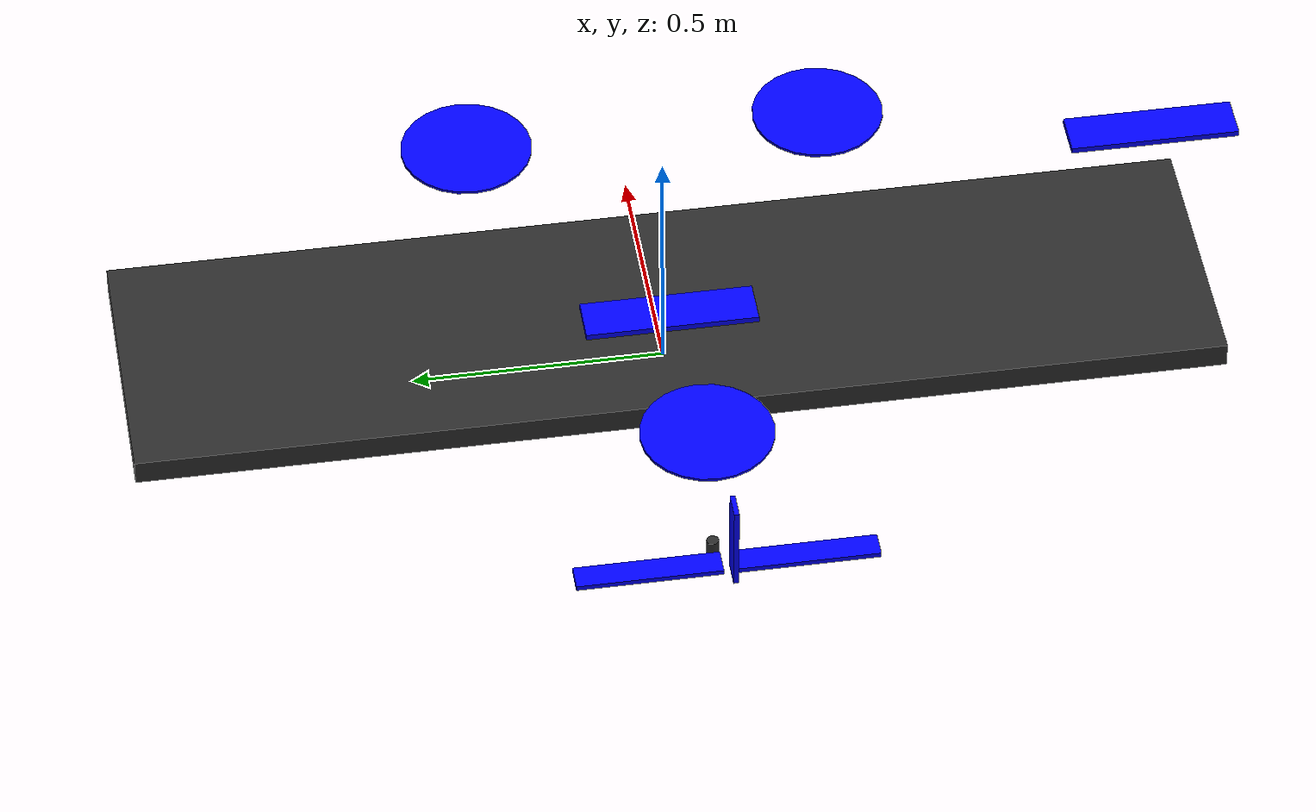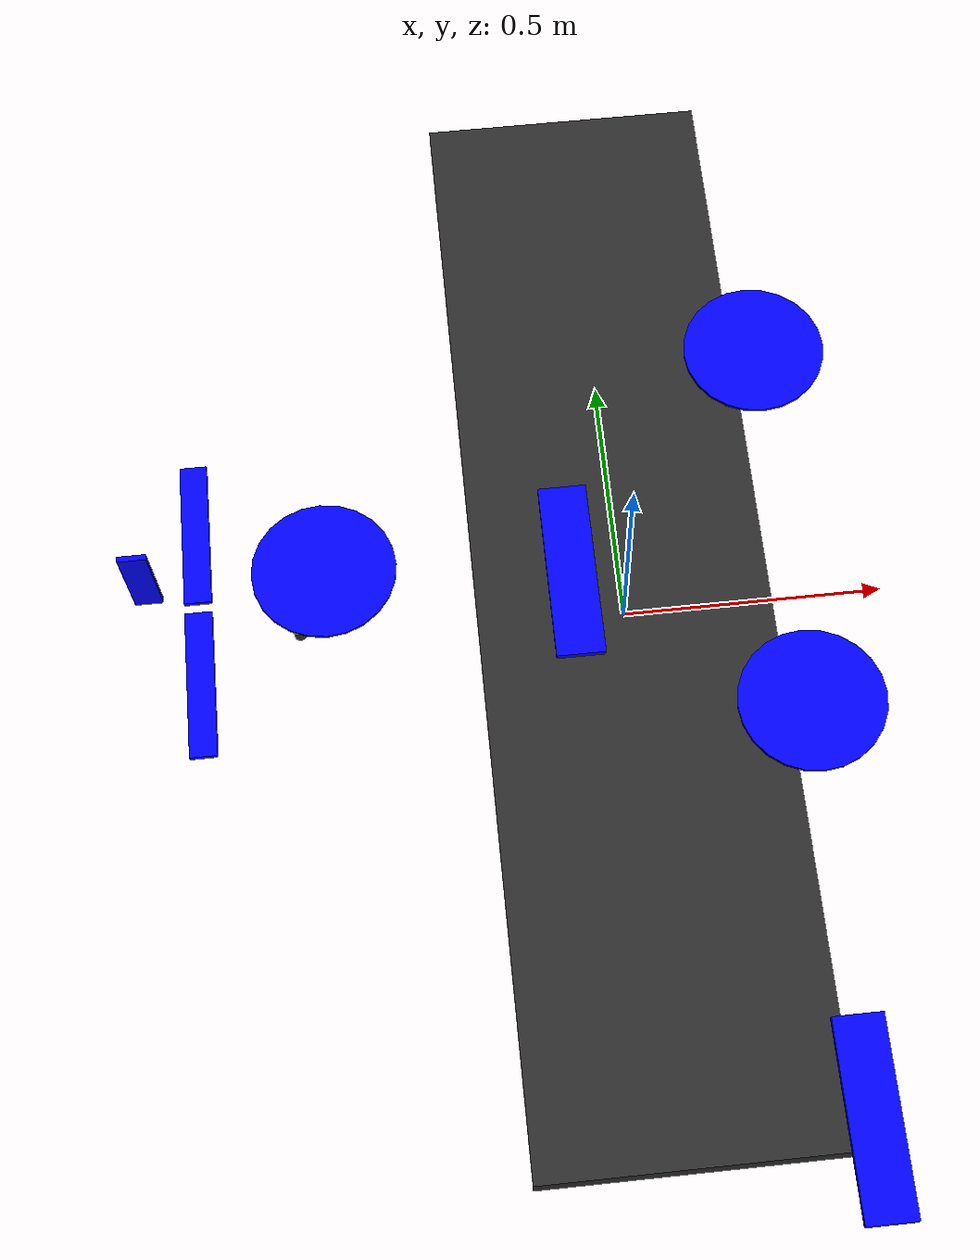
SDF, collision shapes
<?xml version="1.0" encoding="UTF-8"?>
<sdf version='1.5'>
  <model name='tiltrotor_tailplane'>
    <pose>0 0 0.246 0 0 0</pose>
    <link name='base_link'>
      <pose>0 0 0 0 0 0</pose>
      <inertial>
        <pose>0 0 0 0 0 0</pose>
        <mass>5</mass>
        <inertia>
          <ixx>0.2</ixx>
          <ixy>0</ixy>
          <ixz>0</ixz>
          <iyy>0.25</iyy>
          <iyz>0</iyz>
          <izz>0.25</izz>
        </inertia>
      </inertial>
        <enable_wind>true</enable_wind>
      <collision name='base_link_collision'>
        <pose>-0.01 0 -0.135 0 0 0</pose>
        <geometry>
          <box>
            <size>0.55 2.144 0.05</size>
          </box>
        </geometry>
        <surface>
          <contact>
            <ode>
              <kp>100000</kp>
              <kd>1.0</kd>
              <max_vel>0.1</max_vel>
              <min_depth>0.001</min_depth>
            </ode>
          </contact>
          <friction>
            <ode>
              <mu>0.6</mu>
              <mu2>0.5</mu2>
            </ode>
          </friction>
        </surface>
      </collision>
      <visual name='base_link_visual'>
        <pose>0.53 -1.072 -0.1 1.5707963268 0 3.1415926536</pose>
        <geometry>
          <mesh>
            <scale>0.001 0.001 0.001</scale>
            <uri>model://standard_vtol/meshes/x8_wing.dae</uri>
          </mesh>
        </geometry>
        <material> <!-- DarkGrey-->
          <ambient>0.175 0.175 0.175 1.0</ambient>
          <diffuse>0.175 0.175 0.175 1.0</diffuse>
        </material>
      </visual>
      <!-- Tail boom carrying the rear rotor and the empennage. -->
      <collision name='leg_front_right_collision'>
        <pose>0.22 -0.25 -0.175 0 0 0</pose>
        <geometry>
          <cylinder>
            <radius>0.012</radius>
            <length>0.05</length>
          </cylinder>
        </geometry>
        <surface>
          <contact>
            <ode>
              <kp>12000</kp>
              <kd>25.0</kd>
              <max_vel>0.02</max_vel>
              <min_depth>0.003</min_depth>
            </ode>
          </contact>
          <friction>
            <ode>
              <mu>0.9</mu>
              <mu2>0.9</mu2>
            </ode>
          </friction>
        </surface>
      </collision>
      <visual name='leg_front_right_visual'>
        <pose>0.22 -0.25 -0.175 0 0 0</pose>
        <geometry>
          <cylinder>
            <radius>0.012</radius>
            <length>0.05</length>
          </cylinder>
        </geometry>
        <material>
          <ambient>0.1 0.1 0.1 1.0</ambient>
          <diffuse>0.1 0.1 0.1 1.0</diffuse>
        </material>
      </visual>
      <collision name='leg_front_left_collision'>
        <pose>0.22 0.25 -0.175 0 0 0</pose>
        <geometry>
          <cylinder>
            <radius>0.012</radius>
            <length>0.05</length>
          </cylinder>
        </geometry>
        <surface>
          <contact>
            <ode>
              <kp>12000</kp>
              <kd>25.0</kd>
              <max_vel>0.02</max_vel>
              <min_depth>0.003</min_depth>
            </ode>
          </contact>
          <friction>
            <ode>
              <mu>0.9</mu>
              <mu2>0.9</mu2>
            </ode>
          </friction>
        </surface>
      </collision>
      <visual name='leg_front_left_visual'>
        <pose>0.22 0.25 -0.175 0 0 0</pose>
        <geometry>
          <cylinder>
            <radius>0.012</radius>
            <length>0.05</length>
          </cylinder>
        </geometry>
        <material>
          <ambient>0.1 0.1 0.1 1.0</ambient>
          <diffuse>0.1 0.1 0.1 1.0</diffuse>
        </material>
      </visual>
      <collision name='leg_tail_collision'>
        <pose>-0.62 0.0 -0.175 0 0 0</pose>
        <geometry>
          <cylinder>
            <radius>0.012</radius>
            <length>0.05</length>
          </cylinder>
        </geometry>
        <surface>
          <contact>
            <ode>
              <kp>12000</kp>
              <kd>25.0</kd>
              <max_vel>0.02</max_vel>
              <min_depth>0.003</min_depth>
            </ode>
          </contact>
          <friction>
            <ode>
              <mu>0.9</mu>
              <mu2>0.9</mu2>
            </ode>
          </friction>
        </surface>
      </collision>
      <visual name='leg_tail_visual'>
        <pose>-0.62 0.0 -0.175 0 0 0</pose>
        <geometry>
          <cylinder>
            <radius>0.012</radius>
            <length>0.05</length>
          </cylinder>
        </geometry>
        <material>
          <ambient>0.1 0.1 0.1 1.0</ambient>
          <diffuse>0.1 0.1 0.1 1.0</diffuse>
        </material>
      </visual>
      <visual name='tail_boom'>
        <pose>-0.545 0 -0.01 0 0 0</pose>
        <geometry>
          <box>
            <size>0.71 0.04 0.02</size>
          </box>
        </geometry>
        <material> <!-- DarkGrey-->
          <ambient>0.175 0.175 0.175 1.0</ambient>
          <diffuse>0.175 0.175 0.175 1.0</diffuse>
        </material>
      </visual>
      <!-- Horizontal stabiliser, slung under the rear rotor. Its 0.11 m of clearance
           below the rotor disc keeps the two from intersecting through the tilt sweep. -->
      <visual name='tailplane'>
        <pose>-0.70 0 -0.04 0 0 0</pose>
        <geometry>
          <box>
            <size>0.16 0.60 0.012</size>
          </box>
        </geometry>
        <material> <!-- DarkGrey-->
          <ambient>0.175 0.175 0.175 1.0</ambient>
          <diffuse>0.175 0.175 0.175 1.0</diffuse>
        </material>
      </visual>
      <!-- Strut tying the stabiliser to the boom. -->
      <visual name='tailplane_strut'>
        <pose>-0.70 0 -0.0225 0 0 0</pose>
        <geometry>
          <box>
            <size>0.05 0.03 0.045</size>
          </box>
        </geometry>
        <material> <!-- DarkGrey-->
          <ambient>0.175 0.175 0.175 1.0</ambient>
          <diffuse>0.175 0.175 0.175 1.0</diffuse>
        </material>
      </visual>
      <!-- Fin. -->
      <visual name='vertical_stabiliser'>
        <pose>-0.78 0 0.10 0 0 0</pose>
        <geometry>
          <box>
            <size>0.16 0.02 0.2</size>
          </box>
        </geometry>
        <material> <!-- DarkGrey-->
          <ambient>0.175 0.175 0.175 1.0</ambient>
          <diffuse>0.175 0.175 0.175 1.0</diffuse>
        </material>
      </visual>
      <visual name='right_motor_pylon'>
        <pose>0.2175 -0.35 0.04 0 0 0</pose>
        <geometry>
          <box>
            <size>0.105 0.03 0.06</size>
          </box>
        </geometry>
        <material> <!-- DarkGrey-->
          <ambient>0.175 0.175 0.175 1.0</ambient>
          <diffuse>0.175 0.175 0.175 1.0</diffuse>
        </material>
      </visual>
      <visual name='left_motor_pylon'>
        <pose>0.2175 0.35 0.04 0 0 0</pose>
        <geometry>
          <box>
            <size>0.105 0.03 0.06</size>
          </box>
        </geometry>
        <material> <!-- DarkGrey-->
          <ambient>0.175 0.175 0.175 1.0</ambient>
          <diffuse>0.175 0.175 0.175 1.0</diffuse>
        </material>
      </visual>
      <gravity>1</gravity>
      <velocity_decay />
      <self_collide>0</self_collide>

      <sensor name="imu_sensor" type="imu">
        <gz_frame_id>base_link</gz_frame_id>
        <always_on>1</always_on>
        <update_rate>250</update_rate>
        <imu>
          <angular_velocity>
            <x>
              <noise type="gaussian">
                <mean>0</mean>
                <stddev>0.0003394</stddev>
                <dynamic_bias_stddev>3.8785e-05</dynamic_bias_stddev>
                <dynamic_bias_correlation_time>1000</dynamic_bias_correlation_time>
              </noise>
            </x>
            <y>
              <noise type="gaussian">
                <mean>0</mean>
                <stddev>0.0003394</stddev>
                <dynamic_bias_stddev>3.8785e-05</dynamic_bias_stddev>
                <dynamic_bias_correlation_time>1000</dynamic_bias_correlation_time>
              </noise>
            </y>
            <z>
              <noise type="gaussian">
                <mean>0</mean>
                <stddev>0.0003394</stddev>
                <dynamic_bias_stddev>3.8785e-05</dynamic_bias_stddev>
                <dynamic_bias_correlation_time>1000</dynamic_bias_correlation_time>
              </noise>
            </z>
          </angular_velocity>
          <linear_acceleration>
            <x>
              <noise type="gaussian">
                <mean>0</mean>
                <stddev>0.004</stddev>
                <dynamic_bias_stddev>0.006</dynamic_bias_stddev>
                <dynamic_bias_correlation_time>300</dynamic_bias_correlation_time>
              </noise>
            </x>
            <y>
              <noise type="gaussian">
                <mean>0</mean>
                <stddev>0.004</stddev>
                <dynamic_bias_stddev>0.006</dynamic_bias_stddev>
                <dynamic_bias_correlation_time>300</dynamic_bias_correlation_time>
              </noise>
            </y>
            <z>
              <noise type="gaussian">
                <mean>0</mean>
                <stddev>0.004</stddev>
                <dynamic_bias_stddev>0.006</dynamic_bias_stddev>
                <dynamic_bias_correlation_time>300</dynamic_bias_correlation_time>
              </noise>
            </z>
          </linear_acceleration>
        </imu>
      </sensor>
      <sensor name="air_pressure_sensor" type="air_pressure">
        <gz_frame_id>base_link</gz_frame_id>
        <always_on>1</always_on>
        <update_rate>50</update_rate>
        <air_pressure>
          <pressure>
            <noise type="gaussian">
              <mean>0</mean>
              <stddev>0.01</stddev>
            </noise>
          </pressure>
        </air_pressure>
      </sensor>
      <sensor name="magnetometer_sensor" type="magnetometer">
        <gz_frame_id>base_link</gz_frame_id>
        <always_on>1</always_on>
        <update_rate>100</update_rate>
        <magnetometer>
          <x>
            <noise type="gaussian">
              <stddev>0.0001</stddev>
            </noise>
          </x>
          <y>
            <noise type="gaussian">
              <stddev>0.0001</stddev>
            </noise>
          </y>
          <z>
            <noise type="gaussian">
              <stddev>0.0001</stddev>
            </noise>
          </z>
        </magnetometer>
      </sensor>
      <sensor name="navsat_sensor" type="navsat">
        <gz_frame_id>base_link</gz_frame_id>
        <always_on>1</always_on>
        <update_rate>30</update_rate>
      </sensor>
    </link>

    <!-- ============ Right wing rotor (tilting, above the wing) ============ -->
    <link name='motor_0'>
      <pose>0.27 -0.35 0.085 0 0 0</pose>
      <inertial>
        <pose>0 0 0 0 0 0</pose>
        <mass>0.05</mass>
        <inertia>
          <ixx>0.0166704</ixx>
          <ixy>0</ixy>
          <ixz>0</ixz>
          <iyy>0.0166704</iyy>
          <iyz>0</iyz>
          <izz>0.0167604</izz>
        </inertia>
      </inertial>
        <enable_wind>true</enable_wind>
      <collision name='motor_0_collision'>
        <pose>0 0 0 0 0 0</pose>
        <geometry>
          <cylinder>
            <length>0.035</length>
            <radius>0.02</radius>
          </cylinder>
        </geometry>
        <surface>
          <contact>
            <ode />
          </contact>
          <friction>
            <ode />
          </friction>
        </surface>
      </collision>
      <visual name='motor_0_visual'>
        <pose>0 0 0 0 0 0</pose>
        <geometry>
          <cylinder>
            <length>0.035</length>
            <radius>0.02</radius>
          </cylinder>
        </geometry>
        <material>
          <ambient>0.175 0.175 0.175 1.0</ambient>
          <diffuse>0.175 0.175 0.175 1.0</diffuse>
        </material>
      </visual>
      <gravity>1</gravity>
      <velocity_decay />
      <self_collide>0</self_collide>
    </link>
    <joint name='motor_0_joint' type='revolute'>
      <child>motor_0</child>
      <parent>base_link</parent>
      <axis>
        <xyz>0 1 0</xyz>
        <limit>
          <lower>0.</lower>
          <upper>1.57</upper>
        </limit>
        <dynamics>
          <friction>1.0</friction>
          <spring_reference>0</spring_reference>
          <spring_stiffness>0</spring_stiffness>
        </dynamics>
        <use_parent_model_frame>1</use_parent_model_frame>
      </axis>
    </joint>
    <link name='rotor_0'>
      <pose>0.27 -0.35 0.11 0 0 0</pose>
      <inertial>
        <pose>0 0 0 0 0 0</pose>
        <mass>0.005</mass>
        <inertia>
          <ixx>9.75e-07</ixx>
          <ixy>0</ixy>
          <ixz>0</ixz>
          <iyy>0.000166704</iyy>
          <iyz>0</iyz>
          <izz>0.000167604</izz>
        </inertia>
      </inertial>
        <enable_wind>true</enable_wind>
      <collision name='rotor_0_collision'>
        <pose>0 0 0 0 0 0</pose>
        <geometry>
          <cylinder>
            <length>0.005</length>
            <radius>0.1294</radius>
          </cylinder>
        </geometry>
        <surface>
          <contact>
            <ode />
          </contact>
          <friction>
            <ode />
          </friction>
        </surface>
      </collision>
      <visual name='rotor_0_visual'>
        <pose>0 0 0 0 0 0</pose>
        <geometry>
          <mesh>
            <scale>1 1 1</scale>
            <uri>model://standard_vtol/meshes/iris_prop_ccw.dae</uri>
          </mesh>
        </geometry>
        <material>  <!-- Blue -->
          <ambient>0 0 1 1.0</ambient>
          <diffuse>0 0 1 1.0</diffuse>
        </material>
      </visual>
      <gravity>1</gravity>
      <velocity_decay />
      <self_collide>0</self_collide>
    </link>
    <joint name='rotor_0_joint' type='revolute'>
      <child>rotor_0</child>
      <parent>motor_0</parent>
      <axis>
        <xyz>0 0 1</xyz>
        <limit>
          <lower>-1e+16</lower>
          <upper>1e+16</upper>
        </limit>
        <dynamics>
          <spring_reference>0</spring_reference>
          <spring_stiffness>0</spring_stiffness>
        </dynamics>
        <use_parent_model_frame>1</use_parent_model_frame>
      </axis>
    </joint>

    <!-- ============ Left wing rotor (tilting, above the wing) ============ -->
    <link name='motor_1'>
      <pose>0.27 0.35 0.085 0 0 0</pose>
      <inertial>
        <pose>0 0 0 0 0 0</pose>
        <mass>0.05</mass>
        <inertia>
          <ixx>0.0166704</ixx>
          <ixy>0</ixy>
          <ixz>0</ixz>
          <iyy>0.0166704</iyy>
          <iyz>0</iyz>
          <izz>0.0167604</izz>
        </inertia>
      </inertial>
        <enable_wind>true</enable_wind>
      <collision name='motor_1_collision'>
        <pose>0 0 0 0 0 0</pose>
        <geometry>
          <cylinder>
            <length>0.035</length>
            <radius>0.02</radius>
          </cylinder>
        </geometry>
        <surface>
          <contact>
            <ode />
          </contact>
          <friction>
            <ode />
          </friction>
        </surface>
      </collision>
      <visual name='motor_1_visual'>
        <pose>0 0 0 0 0 0</pose>
        <geometry>
          <cylinder>
            <length>0.035</length>
            <radius>0.02</radius>
          </cylinder>
        </geometry>
        <material>
          <ambient>0.175 0.175 0.175 1.0</ambient>
          <diffuse>0.175 0.175 0.175 1.0</diffuse>
        </material>
      </visual>
      <gravity>1</gravity>
      <velocity_decay />
      <self_collide>0</self_collide>
    </link>
    <joint name='motor_1_joint' type='revolute'>
      <child>motor_1</child>
      <parent>base_link</parent>
      <axis>
        <xyz>0 1 0</xyz>
        <limit>
          <lower>0.</lower>
          <upper>1.57</upper>
        </limit>
        <dynamics>
          <friction>1.0</friction>
          <spring_reference>0</spring_reference>
          <spring_stiffness>0</spring_stiffness>
        </dynamics>
        <use_parent_model_frame>1</use_parent_model_frame>
      </axis>
    </joint>
    <link name='rotor_1'>
      <pose>0.27 0.35 0.11 0 0 0</pose>
      <inertial>
        <pose>0 0 0 0 0 0</pose>
        <mass>0.005</mass>
        <inertia>
          <ixx>9.75e-07</ixx>
          <ixy>0</ixy>
          <ixz>0</ixz>
          <iyy>0.000166704</iyy>
          <iyz>0</iyz>
          <izz>0.000167604</izz>
        </inertia>
      </inertial>
        <enable_wind>true</enable_wind>
      <collision name='rotor_1_collision'>
        <pose>0 0 0 0 0 0</pose>
        <geometry>
          <cylinder>
            <length>0.005</length>
            <radius>0.1294</radius>
          </cylinder>
        </geometry>
        <surface>
          <contact>
            <ode />
          </contact>
          <friction>
            <ode />
          </friction>
        </surface>
      </collision>
      <visual name='rotor_1_visual'>
        <pose>0 0 0 0 0 0</pose>
        <geometry>
          <mesh>
            <scale>1 1 1</scale>
            <uri>model://standard_vtol/meshes/iris_prop_cw.dae</uri>
          </mesh>
        </geometry>
        <material>  <!-- Blue -->
          <ambient>0 0 1 1.0</ambient>
          <diffuse>0 0 1 1.0</diffuse>
        </material>
      </visual>
      <gravity>1</gravity>
      <velocity_decay />
      <self_collide>0</self_collide>
    </link>
    <joint name='rotor_1_joint' type='revolute'>
      <child>rotor_1</child>
      <parent>motor_1</parent>
      <axis>
        <xyz>0 0 1</xyz>
        <limit>
          <lower>-1e+16</lower>
          <upper>1e+16</upper>
        </limit>
        <dynamics>
          <spring_reference>0</spring_reference>
          <spring_stiffness>0</spring_stiffness>
        </dynamics>
        <use_parent_model_frame>1</use_parent_model_frame>
      </axis>
    </joint>

    <!-- ============ Tail rotor (tilting; the pusher in forward flight) ============ -->
    <link name='motor_2'>
      <pose>-0.55 0 0.045 0 0 0</pose>
      <inertial>
        <pose>0 0 0 0 0 0</pose>
        <mass>0.05</mass>
        <inertia>
          <ixx>0.0166704</ixx>
          <ixy>0</ixy>
          <ixz>0</ixz>
          <iyy>0.0166704</iyy>
          <iyz>0</iyz>
          <izz>0.0167604</izz>
        </inertia>
      </inertial>
        <enable_wind>true</enable_wind>
      <collision name='motor_2_collision'>
        <pose>0 0 0 0 0 0</pose>
        <geometry>
          <cylinder>
            <length>0.035</length>
            <radius>0.02</radius>
          </cylinder>
        </geometry>
        <surface>
          <contact>
            <ode />
          </contact>
          <friction>
            <ode />
          </friction>
        </surface>
      </collision>
      <visual name='motor_2_visual'>
        <pose>0 0 0 0 0 0</pose>
        <geometry>
          <cylinder>
            <length>0.035</length>
            <radius>0.02</radius>
          </cylinder>
        </geometry>
        <material>
          <ambient>0.175 0.175 0.175 1.0</ambient>
          <diffuse>0.175 0.175 0.175 1.0</diffuse>
        </material>
      </visual>
      <gravity>1</gravity>
      <velocity_decay />
      <self_collide>0</self_collide>
    </link>
    <joint name='motor_2_joint' type='revolute'>
      <child>motor_2</child>
      <parent>base_link</parent>
      <axis>
        <xyz>0 1 0</xyz>
        <limit>
          <lower>0.</lower>
          <upper>0.349</upper>
        </limit>
        <dynamics>
          <friction>1.0</friction>
          <spring_reference>0</spring_reference>
          <spring_stiffness>0</spring_stiffness>
        </dynamics>
        <use_parent_model_frame>1</use_parent_model_frame>
      </axis>
    </joint>
    <link name='rotor_2'>
      <pose>-0.55 0 0.07 0 0 0</pose>
      <inertial>
        <pose>0 0 0 0 0 0</pose>
        <mass>0.005</mass>
        <inertia>
          <ixx>9.75e-07</ixx>
          <ixy>0</ixy>
          <ixz>0</ixz>
          <iyy>0.000166704</iyy>
          <iyz>0</iyz>
          <izz>0.000167604</izz>
        </inertia>
      </inertial>
        <enable_wind>true</enable_wind>
      <collision name='rotor_2_collision'>
        <pose>0 0 0 0 0 0</pose>
        <geometry>
          <cylinder>
            <length>0.005</length>
            <radius>0.1294</radius>
          </cylinder>
        </geometry>
        <surface>
          <contact>
            <ode />
          </contact>
          <friction>
            <ode />
          </friction>
        </surface>
      </collision>
      <visual name='rotor_2_visual'>
        <pose>0 0 0 0 0 0</pose>
        <geometry>
          <mesh>
            <scale>1 1 1</scale>
            <uri>model://standard_vtol/meshes/iris_prop_ccw.dae</uri>
          </mesh>
        </geometry>
        <material>  <!-- Blue -->
          <ambient>0 0 1 1.0</ambient>
          <diffuse>0 0 1 1.0</diffuse>
        </material>
      </visual>
      <gravity>1</gravity>
      <velocity_decay />
      <self_collide>0</self_collide>
    </link>
    <joint name='rotor_2_joint' type='revolute'>
      <child>rotor_2</child>
      <parent>motor_2</parent>
      <axis>
        <xyz>0 0 1</xyz>
        <limit>
          <lower>-1e+16</lower>
          <upper>1e+16</upper>
        </limit>
        <dynamics>
          <spring_reference>0</spring_reference>
          <spring_stiffness>0</spring_stiffness>
        </dynamics>
        <use_parent_model_frame>1</use_parent_model_frame>
      </axis>
    </joint>
    <link name="left_elevon">
      <inertial>
        <mass>0.00000001</mass>
        <inertia>
          <ixx>0.000001</ixx>
          <ixy>0.0</ixy>
          <iyy>0.000001</iyy>
          <ixz>0.0</ixz>
          <iyz>0.0</iyz>
          <izz>0.000001</izz>
        </inertia>
        <pose>0 0.3 0 0.00 0 0.0</pose>
      </inertial>
        <enable_wind>true</enable_wind>
      <visual name='left_elevon_visual'>
        <pose>-0.105 0.004 -0.034 1.5707963268 0 3.1415926536</pose>
        <geometry>
          <mesh>
            <scale>0.001 0.001 0.001</scale>
            <uri>model://standard_vtol/meshes/x8_elevon_left.dae</uri>
          </mesh>
        </geometry>
        <material>  <!-- Blue -->
          <ambient>0 0 1 1.0</ambient>
          <diffuse>0 0 1 1.0</diffuse>
        </material>
      </visual>
      <collision name='left_elevon_collision'>
        <pose>-0.105 0.004 -0.034 1.5707963268 0 3.1415926536</pose>
        <geometry>
          <box>
            <size>0.09 0.012 0.34</size>
          </box>
        </geometry>
        <surface>
          <contact>
            <ode>
              <kp>50000</kp>
              <kd>2.0</kd>
              <max_vel>0.1</max_vel>
              <min_depth>0.001</min_depth>
            </ode>
          </contact>
          <friction>
            <ode>
              <mu>0.6</mu>
              <mu2>0.5</mu2>
            </ode>
          </friction>
        </surface>
      </collision>
</link>
    <link name="right_elevon">
      <inertial>
        <mass>0.00000001</mass>
        <inertia>
          <ixx>0.000001</ixx>
          <ixy>0.0</ixy>
          <iyy>0.000001</iyy>
          <ixz>0.0</ixz>
          <iyz>0.0</iyz>
          <izz>0.000001</izz>
        </inertia>
        <pose>0 -0.6 0 0.00 0 0.0</pose>
      </inertial>
        <enable_wind>true</enable_wind>
      <visual name='right_elevon_visual'>
        <pose>0.281 -1.032 -0.034 1.5707963268 0 3.1415926536</pose>
        <geometry>
          <mesh>
            <scale>0.001 0.001 0.001</scale>
            <uri>model://standard_vtol/meshes/x8_elevon_right.dae</uri>
          </mesh>
        </geometry>
        <material>  <!-- Blue -->
          <ambient>0 0 1 1.0</ambient>
          <diffuse>0 0 1 1.0</diffuse>
        </material>
      </visual>
          <collision name='right_elevon_collision'>
        <pose>0.281 -1.032 -0.034 1.5707963268 0 3.1415926536</pose>
        <geometry>
          <box>
            <size>0.09 0.012 0.34</size>
          </box>
        </geometry>
        <surface>
          <contact>
            <ode>
              <kp>50000</kp>
              <kd>2.0</kd>
              <max_vel>0.1</max_vel>
              <min_depth>0.001</min_depth>
            </ode>
          </contact>
          <friction>
            <ode>
              <mu>0.6</mu>
              <mu2>0.5</mu2>
            </ode>
          </friction>
        </surface>
      </collision>
</link>

    <joint name='left_elevon_joint' type='revolute'>
      <parent>base_link</parent>
      <child>left_elevon</child>
      <pose>-0.18 0.6 -0.005 0 0 0.265</pose>
      <axis>
        <xyz>0 1 0</xyz>
        <limit>
          <lower>-0.78</lower>
          <upper>0.78</upper>
        </limit>
        <dynamics>
          <damping>1.000</damping>
        </dynamics>
      </axis>
      <physics>
        <ode>
          <implicit_spring_damper>1</implicit_spring_damper>
        </ode>
      </physics>
    </joint>
    <joint name='right_elevon_joint' type='revolute'>
      <parent>base_link</parent>
      <child>right_elevon</child>
      <pose>-0.18 -0.6 -0.005 0 0 -0.265</pose>
      <axis>
        <xyz>0 1 0</xyz>
        <limit>
          <lower>-0.78</lower>
          <upper>0.78</upper>
        </limit>
        <dynamics>
          <damping>1.000</damping>
        </dynamics>
      </axis>
      <physics>
        <ode>
          <implicit_spring_damper>1</implicit_spring_damper>
        </ode>
      </physics>
    </joint>

    <link name="left_elevator">
      <pose>-0.79 0.15 -0.04 0 0 0</pose>
      <inertial>
        <mass>0.00000001</mass>
        <inertia>
          <ixx>0.000001</ixx>
          <ixy>0.0</ixy>
          <iyy>0.000001</iyy>
          <ixz>0.0</ixz>
          <iyz>0.0</iyz>
          <izz>0.000001</izz>
        </inertia>
      </inertial>
        <enable_wind>true</enable_wind>
      <visual name="left_elevator_visual">
        <geometry>
          <box>
            <size>0.05 0.28 0.01</size>
          </box>
        </geometry>
        <material>  <!-- Blue -->
          <ambient>0 0 1 1.0</ambient>
          <diffuse>0 0 1 1.0</diffuse>
        </material>
      </visual>
          <collision name='left_elevator_collision'>
        <geometry>
          <box>
            <size>0.05 0.28 0.01</size>
          </box>
        </geometry>
        <surface>
          <contact>
            <ode>
              <kp>50000</kp>
              <kd>2.0</kd>
              <max_vel>0.1</max_vel>
              <min_depth>0.001</min_depth>
            </ode>
          </contact>
          <friction>
            <ode>
              <mu>0.6</mu>
              <mu2>0.5</mu2>
            </ode>
          </friction>
        </surface>
      </collision>
</link>
    <link name="right_elevator">
      <pose>-0.79 -0.15 -0.04 0 0 0</pose>
      <inertial>
        <mass>0.00000001</mass>
        <inertia>
          <ixx>0.000001</ixx>
          <ixy>0.0</ixy>
          <iyy>0.000001</iyy>
          <ixz>0.0</ixz>
          <iyz>0.0</iyz>
          <izz>0.000001</izz>
        </inertia>
      </inertial>
        <enable_wind>true</enable_wind>
      <visual name="right_elevator_visual">
        <geometry>
          <box>
            <size>0.05 0.28 0.01</size>
          </box>
        </geometry>
        <material>  <!-- Blue -->
          <ambient>0 0 1 1.0</ambient>
          <diffuse>0 0 1 1.0</diffuse>
        </material>
      </visual>
          <collision name='right_elevator_collision'>
        <geometry>
          <box>
            <size>0.05 0.28 0.01</size>
          </box>
        </geometry>
        <surface>
          <contact>
            <ode>
              <kp>50000</kp>
              <kd>2.0</kd>
              <max_vel>0.1</max_vel>
              <min_depth>0.001</min_depth>
            </ode>
          </contact>
          <friction>
            <ode>
              <mu>0.6</mu>
              <mu2>0.5</mu2>
            </ode>
          </friction>
        </surface>
      </collision>
</link>
    <link name="rudder">
      <pose>-0.87 0 0.10 0 0 0</pose>
      <inertial>
        <mass>0.00000001</mass>
        <inertia>
          <ixx>0.000001</ixx>
          <ixy>0.0</ixy>
          <iyy>0.000001</iyy>
          <ixz>0.0</ixz>
          <iyz>0.0</iyz>
          <izz>0.000001</izz>
        </inertia>
      </inertial>
        <enable_wind>true</enable_wind>
      <visual name="rudder_visual">
        <geometry>
          <box>
            <size>0.05 0.01 0.18</size>
          </box>
        </geometry>
        <material>  <!-- Blue -->
          <ambient>0 0 1 1.0</ambient>
          <diffuse>0 0 1 1.0</diffuse>
        </material>
      </visual>
          <collision name='rudder_collision'>
        <geometry>
          <box>
            <size>0.05 0.01 0.18</size>
          </box>
        </geometry>
        <surface>
          <contact>
            <ode>
              <kp>50000</kp>
              <kd>2.0</kd>
              <max_vel>0.1</max_vel>
              <min_depth>0.001</min_depth>
            </ode>
          </contact>
          <friction>
            <ode>
              <mu>0.6</mu>
              <mu2>0.5</mu2>
            </ode>
          </friction>
        </surface>
      </collision>
</link>
    <joint name='left_elevator_joint' type='revolute'>
      <parent>base_link</parent>
      <child>left_elevator</child>
      <pose>0.025 0 0 0 0 0</pose>
      <axis>
        <xyz>0 1 0</xyz>
        <limit>
          <lower>-0.52</lower>
          <upper>0.52</upper>
        </limit>
        <dynamics>
          <damping>1.000</damping>
        </dynamics>
        <use_parent_model_frame>1</use_parent_model_frame>
      </axis>
      <physics>
        <ode>
          <implicit_spring_damper>1</implicit_spring_damper>
        </ode>
      </physics>
    </joint>
    <joint name='right_elevator_joint' type='revolute'>
      <parent>base_link</parent>
      <child>right_elevator</child>
      <pose>0.025 0 0 0 0 0</pose>
      <axis>
        <xyz>0 1 0</xyz>
        <limit>
          <lower>-0.52</lower>
          <upper>0.52</upper>
        </limit>
        <dynamics>
          <damping>1.000</damping>
        </dynamics>
        <use_parent_model_frame>1</use_parent_model_frame>
      </axis>
      <physics>
        <ode>
          <implicit_spring_damper>1</implicit_spring_damper>
        </ode>
      </physics>
    </joint>
    <joint name='rudder_joint' type='revolute'>
      <parent>base_link</parent>
      <child>rudder</child>
      <pose>0.025 0 0 0 0 0</pose>
      <axis>
        <xyz>0 0 1</xyz>
        <limit>
          <lower>-0.52</lower>
          <upper>0.52</upper>
        </limit>
        <dynamics>
          <damping>1.000</damping>
        </dynamics>
        <use_parent_model_frame>1</use_parent_model_frame>
      </axis>
      <physics>
        <ode>
          <implicit_spring_damper>1</implicit_spring_damper>
        </ode>
      </physics>
    </joint>

    <!-- Wing halves. The x8 elevons act as ailerons here (roll only) - pitch is the
         tailplane's job - which is what CA_SV_CS0/1_TYPE 1/2 declare. -->
    <plugin filename="gz-sim-lift-drag-system" name="gz::sim::systems::LiftDrag">
      <a0>0.05984281113</a0>
      <cla>4.752798721</cla>
      <cda>0.6417112299</cda>
      <cma>0.0</cma>
      <alpha_stall>0.3391428111</alpha_stall>
      <cla_stall>-3.85</cla_stall>
      <cda_stall>-0.9233984055</cda_stall>
      <cma_stall>0</cma_stall>
      <cp>-0.05 0.3 0.05</cp>
      <area>0.5</area>
      <air_density>1.2041</air_density>
      <forward>1 0 0</forward>
      <upward>0 0 1</upward>
      <link_name>base_link</link_name>
      <control_joint_name>
        left_elevon_joint
      </control_joint_name>
      <control_joint_rad_to_cl>-4.0</control_joint_rad_to_cl>
    </plugin>
    <plugin
      filename="gz-sim-joint-position-controller-system"
      name="gz::sim::systems::JointPositionController">
      <joint_name>left_elevon_joint</joint_name>
      <sub_topic>servo_0</sub_topic>
    </plugin>
    <plugin filename="gz-sim-lift-drag-system" name="gz::sim::systems::LiftDrag">
      <a0>0.05984281113</a0>
      <cla>4.752798721</cla>
      <cda>0.6417112299</cda>
      <cma>0.0</cma>
      <alpha_stall>0.3391428111</alpha_stall>
      <cla_stall>-3.85</cla_stall>
      <cda_stall>-0.9233984055</cda_stall>
      <cma_stall>0</cma_stall>
      <cp>-0.05 -0.3 0.05</cp>
      <area>0.5</area>
      <air_density>1.2041</air_density>
      <forward>1 0 0</forward>
      <upward>0 0 1</upward>
      <link_name>base_link</link_name>
      <control_joint_name>
        right_elevon_joint
      </control_joint_name>
      <control_joint_rad_to_cl>-4.0</control_joint_rad_to_cl>
    </plugin>
    <plugin
      filename="gz-sim-joint-position-controller-system"
      name="gz::sim::systems::JointPositionController">
      <joint_name>right_elevon_joint</joint_name>
      <sub_topic>servo_1</sub_topic>
    </plugin>

    <plugin filename="gz-sim-lift-drag-system" name="gz::sim::systems::LiftDrag">
      <a0>-0.2</a0>
      <cla>4.752798721</cla>
      <cda>0.6417112299</cda>
      <cma>0.0</cma>
      <alpha_stall>0.3391428111</alpha_stall>
      <cla_stall>-3.85</cla_stall>
      <cda_stall>-0.9233984055</cda_stall>
      <cma_stall>0</cma_stall>
      <cp>-0.70 0.15 -0.04</cp>
      <area>0.048</area>
      <air_density>1.2041</air_density>
      <forward>1 0 0</forward>
      <upward>0 0 1</upward>
      <link_name>base_link</link_name>
      <control_joint_name>
        left_elevator_joint
      </control_joint_name>
      <control_joint_rad_to_cl>-12.0</control_joint_rad_to_cl>
    </plugin>
    <plugin
      filename="gz-sim-joint-position-controller-system"
      name="gz::sim::systems::JointPositionController">
      <joint_name>left_elevator_joint</joint_name>
      <sub_topic>servo_2</sub_topic>
    </plugin>
    <plugin filename="gz-sim-lift-drag-system" name="gz::sim::systems::LiftDrag">
      <a0>-0.2</a0>
      <cla>4.752798721</cla>
      <cda>0.6417112299</cda>
      <cma>0.0</cma>
      <alpha_stall>0.3391428111</alpha_stall>
      <cla_stall>-3.85</cla_stall>
      <cda_stall>-0.9233984055</cda_stall>
      <cma_stall>0</cma_stall>
      <cp>-0.70 -0.15 -0.04</cp>
      <area>0.048</area>
      <air_density>1.2041</air_density>
      <forward>1 0 0</forward>
      <upward>0 0 1</upward>
      <link_name>base_link</link_name>
      <control_joint_name>
        right_elevator_joint
      </control_joint_name>
      <control_joint_rad_to_cl>-12.0</control_joint_rad_to_cl>
    </plugin>
    <plugin
      filename="gz-sim-joint-position-controller-system"
      name="gz::sim::systems::JointPositionController">
      <joint_name>right_elevator_joint</joint_name>
      <sub_topic>servo_3</sub_topic>
    </plugin>

    <plugin filename="gz-sim-lift-drag-system" name="gz::sim::systems::LiftDrag">
      <a0>0.0</a0>
      <cla>4.752798721</cla>
      <cda>0.6417112299</cda>
      <cma>0.0</cma>
      <alpha_stall>0.3391428111</alpha_stall>
      <cla_stall>-3.85</cla_stall>
      <cda_stall>-0.9233984055</cda_stall>
      <cma_stall>0</cma_stall>
      <!-- cp fin ile birlikte -0.74 -> -0.86 (adim 132). Bu bir KONTROL
           SABITIDIR: TiltrotorIndiParams.hpp SURF_CPX[4] ile SENKRON KALMALI. -->
      <cp>-0.78 0 0.10</cp>
      <area>0.032</area>
      <air_density>1.2041</air_density>
      <forward>1 0 0</forward>
      <upward>0 1 0</upward>
      <link_name>base_link</link_name>
      <control_joint_name>
        rudder_joint
      </control_joint_name>
      <control_joint_rad_to_cl>-6.0</control_joint_rad_to_cl>
    </plugin>
    <plugin
      filename="gz-sim-joint-position-controller-system"
      name="gz::sim::systems::JointPositionController">
      <joint_name>rudder_joint</joint_name>
      <sub_topic>servo_4</sub_topic>
    </plugin>

    <!-- ===================== Propulsion ===================== -->
    <plugin filename="gz-sim-multicopter-motor-model-system"
      name="gz::sim::systems::MulticopterMotorModel">
      <jointName>rotor_0_joint</jointName>
      <linkName>rotor_0</linkName>
      <turningDirection>ccw</turningDirection>
      <timeConstantUp>0.0125</timeConstantUp>
      <timeConstantDown>0.025</timeConstantDown>
      <maxRotVelocity>1500</maxRotVelocity>
      <motorConstant>2e-05</motorConstant>
      <momentConstant>0.06</momentConstant>
      <commandSubTopic>command/motor_speed</commandSubTopic>
      <motorNumber>0</motorNumber>
      <rotorDragCoefficient>0.0000806428</rotorDragCoefficient>
      <rollingMomentCoefficient>1e-06</rollingMomentCoefficient>
      <rotorVelocitySlowdownSim>20</rotorVelocitySlowdownSim>
      <motorType>velocity</motorType>
    </plugin>
    <plugin
      filename="gz-sim-joint-position-controller-system"
      name="gz::sim::systems::JointPositionController">
      <joint_name>motor_0_joint</joint_name>
      <sub_topic>servo_5</sub_topic>
      <p_gain>100</p_gain>
      <i_gain>0</i_gain>
      <d_gain>0</d_gain>
      <i_max>0.0</i_max>
      <i_min>0.0</i_min>
      <cmd_max>2</cmd_max>
      <cmd_min>-2</cmd_min>
      <err_max>0.2</err_max>
    </plugin>
    <plugin filename="gz-sim-multicopter-motor-model-system"
      name="gz::sim::systems::MulticopterMotorModel">
      <jointName>rotor_1_joint</jointName>
      <linkName>rotor_1</linkName>
      <turningDirection>cw</turningDirection>
      <timeConstantUp>0.0125</timeConstantUp>
      <timeConstantDown>0.025</timeConstantDown>
      <maxRotVelocity>1500</maxRotVelocity>
      <motorConstant>2e-05</motorConstant>
      <momentConstant>0.06</momentConstant>
      <commandSubTopic>command/motor_speed</commandSubTopic>
      <motorNumber>1</motorNumber>
      <rotorDragCoefficient>0.0000806428</rotorDragCoefficient>
      <rollingMomentCoefficient>1e-06</rollingMomentCoefficient>
      <rotorVelocitySlowdownSim>20</rotorVelocitySlowdownSim>
      <motorType>velocity</motorType>
    </plugin>
    <plugin
      filename="gz-sim-joint-position-controller-system"
      name="gz::sim::systems::JointPositionController">
      <joint_name>motor_1_joint</joint_name>
      <sub_topic>servo_6</sub_topic>
      <p_gain>100</p_gain>
      <i_gain>0</i_gain>
      <d_gain>0</d_gain>
      <i_max>0.0</i_max>
      <i_min>0.0</i_min>
      <cmd_max>2</cmd_max>
      <cmd_min>-2</cmd_min>
      <err_max>0.2</err_max>
    </plugin>
    <plugin filename="gz-sim-multicopter-motor-model-system"
      name="gz::sim::systems::MulticopterMotorModel">
      <jointName>rotor_2_joint</jointName>
      <linkName>rotor_2</linkName>
      <turningDirection>ccw</turningDirection>
      <timeConstantUp>0.0125</timeConstantUp>
      <timeConstantDown>0.025</timeConstantDown>
      <maxRotVelocity>1500</maxRotVelocity>
      <motorConstant>2e-05</motorConstant>
      <momentConstant>0.06</momentConstant>
      <commandSubTopic>command/motor_speed</commandSubTopic>
      <motorNumber>2</motorNumber>
      <rotorDragCoefficient>0.0000806428</rotorDragCoefficient>
      <rollingMomentCoefficient>1e-06</rollingMomentCoefficient>
      <rotorVelocitySlowdownSim>20</rotorVelocitySlowdownSim>
      <motorType>velocity</motorType>
    </plugin>
    <plugin
      filename="gz-sim-joint-position-controller-system"
      name="gz::sim::systems::JointPositionController">
      <joint_name>motor_2_joint</joint_name>
      <sub_topic>servo_7</sub_topic>
      <p_gain>100</p_gain>
      <i_gain>0</i_gain>
      <d_gain>0</d_gain>
      <i_max>0.0</i_max>
      <i_min>0.0</i_min>
      <cmd_max>2</cmd_max>
      <cmd_min>-2</cmd_min>
      <err_max>0.2</err_max>
    </plugin>

    <plugin filename="gz-sim-joint-state-publisher-system"
      name="gz::sim::systems::JointStatePublisher">
      <joint_name>motor_0_joint</joint_name>
      <joint_name>motor_1_joint</joint_name>
      <joint_name>motor_2_joint</joint_name>
      <joint_name>rotor_0_joint</joint_name>
      <joint_name>rotor_1_joint</joint_name>
      <joint_name>rotor_2_joint</joint_name>
    </plugin>
    <static>0</static>
  </model>
</sdf>
